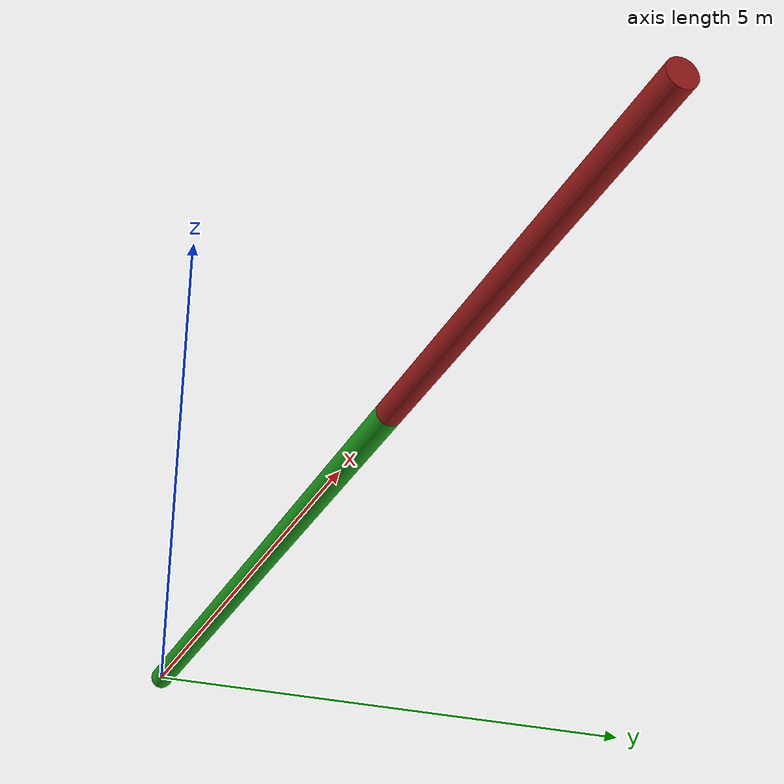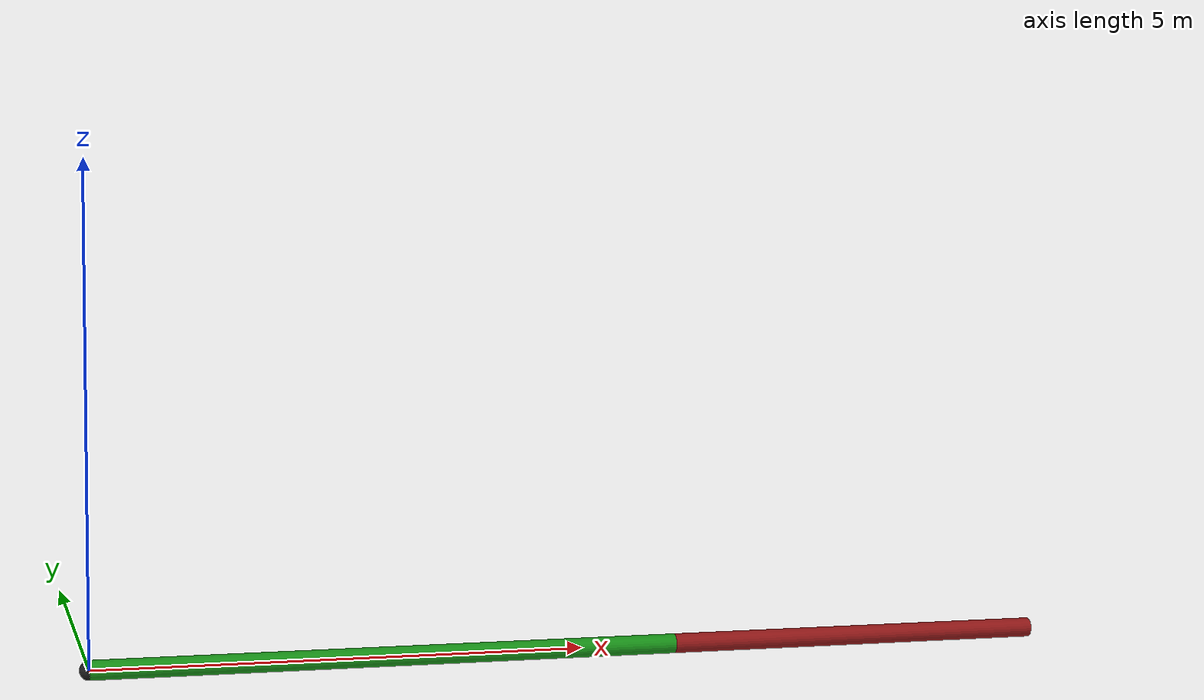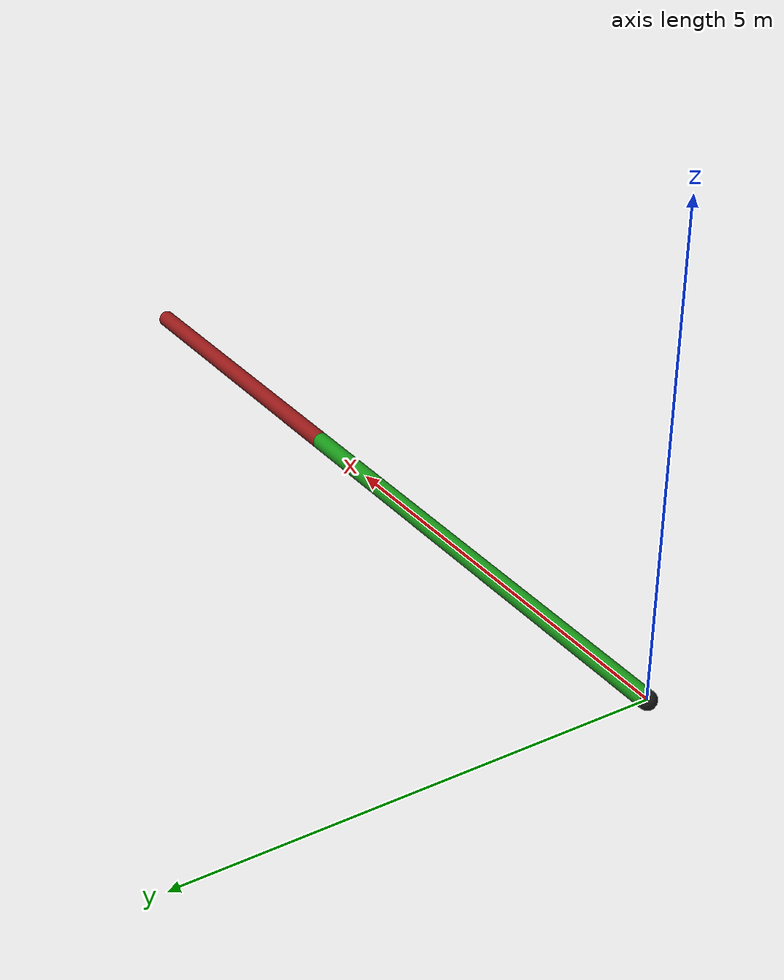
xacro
<?xml version="1.0" ?>

<robot name="2_dof_arm" xmlns:xacro="http://www.ros.org/wiki/xacro">

    <!-- This first link called "world" is empty -->
    <link name="world"></link>

    <!-- A simple fixed joint from our empty world link, to our base. -->
    <!-- The base origin is offset from the world origin. -->
    <joint name="base_joint" type="fixed">
        <origin xyz="0. 0. 0." rpy="0. 0. 0."/>
        <parent link="world"/>
        <child link="base_link"/>
    </joint>

    <!-- Base link, fixed at origin. -->
    <link name="base_link">
        <visual>
            <origin xyz="0. 0. 0." rpy="0. 0. 0."/>
            <geometry>
                <sphere radius="0.1"/>
            </geometry>
            <material name="Dark">
                <color rgba=".1 .1 .1 1."/>
            </material>
        </visual>
    </link>

    <joint name="joint_base_link__link1" type="revolute">
        <parent link="base_link"/>
        <child link="link1"/>
        <origin xyz="0. 0. 0." rpy="0. 0. 0."/>
        <axis xyz="0 0 1"/>
        <limit lower="-6.141592654" upper="6.141592654" velocity="1000" effort="1000"/>
    </joint>

    <link name="link1">
        <visual>
            <origin xyz="3. 0. 0." rpy="0. 1.570796 0."/>
            <geometry>
                <cylinder radius="0.1" length="6."/>
            </geometry>
            <material name="Green">
                <color rgba=".1 .6 .1 1."/>
            </material>
        </visual>
    </link>

    <joint name="joint_link1__link2" type="revolute">
        <parent link="link1"/>
        <child link="link2"/>
        <origin xyz="6. 0. 0." rpy="0. 0. 0."/>
        <axis xyz="0 0 1"/>
        <limit lower="-6.141592654" upper="6.141592654" velocity="1000" effort="1000"/>
    </joint>

    <link name="link2">
        <visual>
            <origin xyz="2. 0. 0." rpy="0. 1.570796 0."/>
            <geometry>
                <cylinder radius="0.1" length="4."/>
            </geometry>
            <material name="red">
                <color rgba=".6 .1 .1 1."/>
            </material>
        </visual>
    </link>

</robot>
